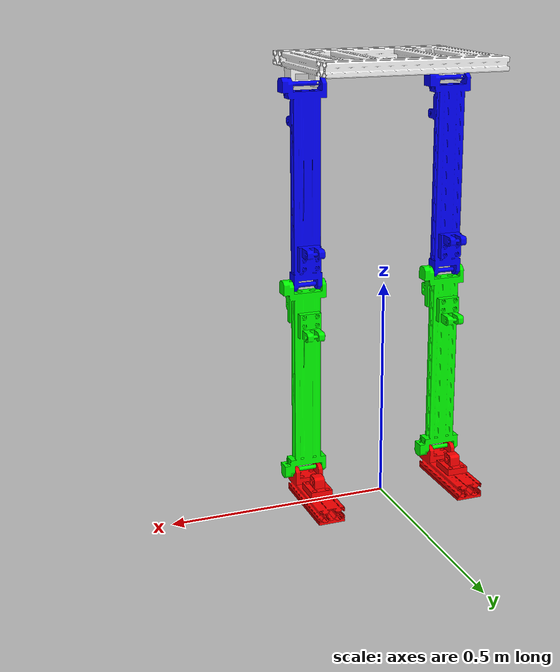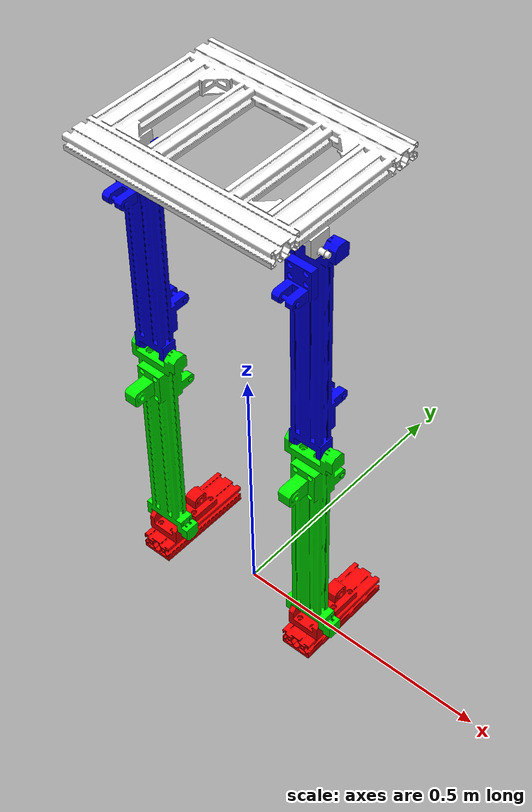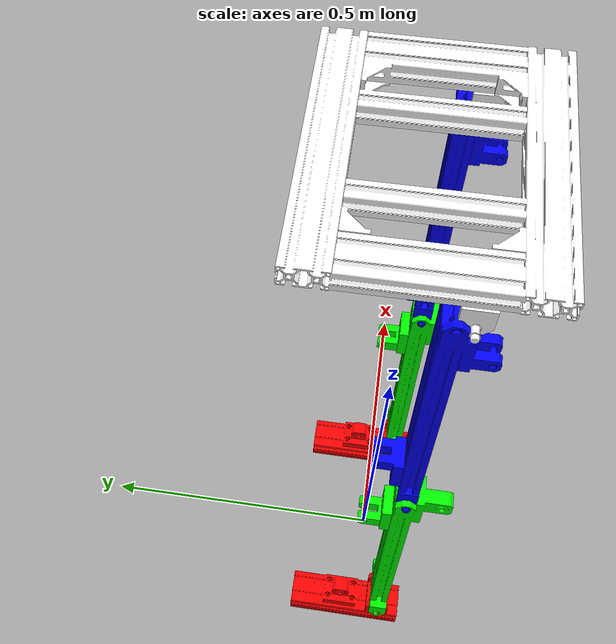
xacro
<?xml version="1.0" encoding="utf-8"?>
<robot
  name="hmr"
  xmlns:xacro="http://www.ros.org/wiki/xacro">

  <xacro:property name="PI" value="3.1415926535897931"/>
  <!-- Import Rviz colors -->
  <!-- Import all Gazebo-customization elements, including Gazebo colors -->
  <gazebo>
    <plugin name="gazebo_ros_control" filename="libgazebo_ros_control.so">
      <robotNamespace>/hmr</robotNamespace>
    </plugin>
  </gazebo>

  <link name="base">
  </link>
  <gazebo reference="base">
    <material>Gazebo/Blue</material>
  </gazebo>

  <joint name="imu_joint" type="fixed">
    <parent link="base"/>
    <child link="imu_link"/>
    <origin xyz="0.0 0.0 1.003 " rpy="0.0 0.0 3.1416"/>
  </joint>

  <!--IMU-->
  <link name="imu_link"/>

  <gazebo reference="imu_link">
    <gravity>true</gravity>
    <sensor name="imu_sensor" type="imu">
      <always_on>true</always_on>
      <update_rate>100</update_rate>
      <visualize>true</visualize>
      <topic>__default_topic__</topic>
      <plugin filename="libgazebo_ros_imu_sensor.so" name="imu_plugin">
        <topicName>imu/data</topicName>
        <bodyName>base</bodyName>
        <updateRateHZ>10.0</updateRateHZ>
        <gaussianNoise>0.0</gaussianNoise>
        <xyzOffset>0 0 0</xyzOffset>
        <rpyOffset>0 0 0</rpyOffset>
        <frameName>imu_link</frameName>
        <initialOrientationAsReference>false</initialOrientationAsReference>
      </plugin>
      <pose>0 0 0 0 0 0</pose>
    </sensor>
  </gazebo>

  <!--BASE_LINK-->
  <link
    name="base_link">
    <inertial>
      <origin
        xyz="-8.1485E-05 0.040306 -0.00093209"
        rpy="0 0 0" />
      <mass
        value="2.4018" />
      <inertia
        ixx="0.0070769"
        ixy="-2.7325E-07"
        ixz="1.9337E-07"
        iyy="0.015485"
        iyz="-1.2071E-07"
        izz="0.009591" />
    </inertial>
    <visual>
      <origin
        xyz="0 0 0"
        rpy="0 0 0" />
      <geometry>
        <mesh
          filename="package://hmr/hmr_description/meshes/base_link.STL" />
      </geometry>
      <material name="white">
        <color rgba="1.0 1.0 1.0 1.0"/>
      </material>
    </visual>
    <collision>
      <origin
        xyz="0 0 0"
        rpy="0 0 0" />
      <geometry>
        <mesh
          filename="package://hmr/hmr_description/meshes/base_link.STL" />
      </geometry>
    </collision>
  </link>
  <gazebo reference="base_link">
    <material>Gazebo/Blue</material>
  </gazebo>
  <joint name="joint" type="fixed">
    <parent link="base"/>
    <child link="base_link"/>
    <origin xyz="0.0 0.0 1.003 " rpy="0.0 0.0 3.1416"/>
  </joint>
  <!--LLINK1-->
  <link
    name="llink1">
    <inertial>
      <origin
        xyz="0.056084 -0.21548 -1.1057E-06"
        rpy="0 0 0" />
      <mass
        value="0.43137" />
      <inertia
        ixx="0.0026126"
        ixy="-1.5474E-07"
        ixz="-5.4626E-08"
        iyy="0.00020436"
        iyz="-9.8E-06"
        izz="0.0027266" />
    </inertial>
    <visual>
      <origin
        xyz="0 0 0"
        rpy="0 0 0" />
      <geometry>
        <mesh
          filename="package://hmr/hmr_description/meshes/llink1.STL" />
      </geometry>
      <material name="blue">
        <color rgba="0.0 0.0 1.0 1.0"/>
      </material>
    </visual>
    <collision>
      <origin
        xyz="0 0 0"
        rpy="0 0 0" />
      <geometry>
        <mesh
          filename="package://hmr/hmr_description/meshes/llink1.STL" />
      </geometry>
    </collision>
  </link>
  <gazebo reference="llink1">
    <material>Gazebo/Blue</material>
  </gazebo>
  <joint
    name="ljoint1"
    type="revolute">
    <origin
      xyz="0.1135 0.04 -0.06"
      rpy="1.5708 0 0" />
    <parent
      link="base_link" />
    <child
      link="llink1" />
    <axis
      xyz="1 0 0" />
    <limit lower="-0.6981" upper="0.5236" effort="2.0" velocity="0.2"/>
  </joint>
  <!--LLINK2-->
  <link
    name="llink2">
    <inertial>
      <origin
        xyz="0.054446 -0.17796 -0.0015786"
        rpy="0 0 0" />
      <mass
        value="0.45541" />
      <inertia
        ixx="0.002625"
        ixy="6.5245E-19"
        ixz="-3.637E-17"
        iyy="0.00023283"
        iyz="4.9149E-06"
        izz="0.0027437" />
    </inertial>
    <visual>
      <origin
        xyz="0 0 0"
        rpy="0 0 0" />
      <geometry>
        <mesh
          filename="package://hmr/hmr_description/meshes/llink2.STL" />
      </geometry>
      <material name="green">
        <color rgba="0.0 1.0 0.0 1.0"/>
      </material>
    </visual>
    <collision>
      <origin
        xyz="0 0 0"
        rpy="0 0 0" />
      <geometry>
        <mesh
          filename="package://hmr/hmr_description/meshes/llink2.STL" />
      </geometry>
    </collision>
  </link>
  <gazebo reference="llink2">
    <material>Gazebo/Blue</material>
  </gazebo>
  <joint
    name="ljoint2"
    type="revolute">
    <origin
      xyz="0 -0.438 0"
      rpy="0 0 0" />
    <parent
      link="llink1" />
    <child
      link="llink2" />
    <axis
      xyz="1 0 0" />
    <limit lower="0.0" upper="1.0472" effort="2.0" velocity="0.2"/>
  </joint>
  <!--LLINK3-->
  <link
    name="llink3">
    <inertial>
      <origin
        xyz="0.049198 -0.036675 0.049331"
        rpy="0 0 0" />
      <mass
        value="0.29119" />
      <inertia
        ixx="0.00061049"
        ixy="1.3662E-07"
        ixz="-9.6685E-08"
        iyy="0.00068435"
        iyz="-6.0356E-08"
        izz="0.00011606" />
    </inertial>
    <visual>
      <origin
        xyz="0 0 0"
        rpy="0 0 0" />
      <geometry>
        <mesh
          filename="package://hmr/hmr_description/meshes/llink3.STL" />
      </geometry>
      <material name="red">
        <color rgba="1.0 0.0 0.0 1.0"/>
      </material>
    </visual>
    <collision>
      <origin
        xyz="0 0 0"
        rpy="0 0 0" />
      <geometry>
        <mesh
          filename="package://hmr/hmr_description/meshes/llink3.STL" />
      </geometry>
    </collision>
  </link>
  <gazebo reference="llink3">
    <material>Gazebo/Blue</material>
  </gazebo>
  <joint
    name="ljoint3"
    type="revolute">
    <origin
      xyz="0.00735 -0.44 0"
      rpy="0 0 0" />
    <parent
      link="llink2" />
    <child
      link="llink3" />
    <axis
      xyz="1 0 0" />
    <limit lower="-0.3491" upper="0.8727" effort="2.0" velocity="0.2"/>
  </joint>
  <!--RLINK1-->
  <link
    name="rlink1">
    <inertial>
      <origin
        xyz="-0.046266 -0.21548 -1.1057E-06"
        rpy="0 0 0" />
      <mass
        value="0.43137" />
      <inertia
        ixx="0.0026126"
        ixy="-1.5474E-07"
        ixz="-5.4626E-08"
        iyy="0.00020436"
        iyz="-9.8E-06"
        izz="0.0027266" />
    </inertial>
    <visual>
      <origin
        xyz="0 0 0"
        rpy="0 0 0" />
      <geometry>
        <mesh
          filename="package://hmr/hmr_description/meshes/rlink1.STL" />
      </geometry>
      <material name="blue">
        <color rgba="0.0 0.0 1.0 1.0"/>
      </material>
    </visual>
    <collision>
      <origin
        xyz="0 0 0"
        rpy="0 0 0" />
      <geometry>
        <mesh
          filename="package://hmr/hmr_description/meshes/rlink1.STL" />
      </geometry>
    </collision>
  </link>
  <gazebo reference="rlink1">
    <material>Gazebo/Blue</material>
  </gazebo>
  <joint
    name="rjoint1"
    type="revolute">
    <origin
      xyz="-0.12415 0.04 -0.06"
      rpy="1.5708 0 0" />
    <parent
      link="base_link" />
    <child
      link="rlink1" />
    <axis
      xyz="1 0 0" />
    <limit lower="-0.6981" upper="0.5236" effort="2.0" velocity="0.2"/>
  </joint>
  <!--RLINK2-->
  <link
    name="rlink2">
    <inertial>
      <origin
        xyz="-0.047904 -0.17796 -0.0015786"
        rpy="0 0 0" />
      <mass
        value="0.45541" />
      <inertia
        ixx="0.002625"
        ixy="6.3076E-19"
        ixz="-3.6373E-17"
        iyy="0.00023283"
        iyz="4.9149E-06"
        izz="0.0027437" />
    </inertial>
    <visual>
      <origin
        xyz="0 0 0"
        rpy="0 0 0" />
      <geometry>
        <mesh
          filename="package://hmr/hmr_description/meshes/rlink2.STL" />
      </geometry>
      <material name="green">
        <color rgba="0.0 1.0 0.0 1.0"/>
      </material>
    </visual>
    <collision>
      <origin
        xyz="0 0 0"
        rpy="0 0 0" />
      <geometry>
        <mesh
          filename="package://hmr/hmr_description/meshes/rlink2.STL" />
      </geometry>
    </collision>
  </link>
  <gazebo reference="rlink2">
    <material>Gazebo/Blue</material>
  </gazebo>
  <joint
    name="rjoint2"
    type="revolute">
    <origin
      xyz="0 -0.438 0"
      rpy="0 0 0" />
    <parent
      link="rlink1" />
    <child
      link="rlink2" />
    <axis
      xyz="1 0 0" />
    <limit lower="0.0" upper="1.0472" effort="2.0" velocity="0.2"/>
  </joint>
  <!--RLINK3-->
  <link
    name="rlink3">
    <inertial>
      <origin
        xyz="-0.045802 -0.036675 0.049331"
        rpy="0 0 0" />
      <mass
        value="0.29119" />
      <inertia
        ixx="0.00061049"
        ixy="1.3662E-07"
        ixz="-9.6685E-08"
        iyy="0.00068435"
        iyz="-6.0356E-08"
        izz="0.00011606" />
    </inertial>
    <visual>
      <origin
        xyz="0 0 0"
        rpy="0 0 0" />
      <geometry>
        <mesh
          filename="package://hmr/hmr_description/meshes/rlink3.STL" />
      </geometry>
      <material name="red">
        <color rgba="1.0 0.0 0.0 1.0"/>
      </material>
    </visual>
    <collision>
      <origin
        xyz="0 0 0"
        rpy="0 0 0" />
      <geometry>
        <mesh
          filename="package://hmr/hmr_description/meshes/rlink3.STL" />
      </geometry>
    </collision>
  </link>
  <gazebo reference="rlink3">
    <material>Gazebo/Blue</material>
  </gazebo>
  <joint
    name="rjoint3"
    type="revolute">
    <origin
      xyz="0 -0.44 0"
      rpy="0 0 0" />
    <parent
      link="rlink2" />
    <child
      link="rlink3" />
    <axis
      xyz="1 0 0" />
    <limit lower="-0.3491" upper="0.8727" effort="2.0" velocity="0.2"/>
  </joint>
  <transmission name="ltran1">
    <type>transmission_interface/SimpleTransmission</type>
    <joint name="ljoint1">
      <hardwareInterface>hardware_interface/EffortJointInterface</hardwareInterface>
    </joint>
    <actuator name="lmotor1">
      <mechanicalReduction>1.0</mechanicalReduction>
      <hardwareInterface>hardware_interface/EffortJointInterface</hardwareInterface>
    </actuator>
  </transmission>

  <transmission name="ltran2">
    <type>transmission_interface/SimpleTransmission</type>
    <joint name="ljoint2">
      <hardwareInterface>hardware_interface/EffortJointInterface</hardwareInterface>
    </joint>
    <actuator name="lmotor2">
      <mechanicalReduction>1.0</mechanicalReduction>
      <hardwareInterface>hardware_interface/EffortJointInterface</hardwareInterface>
    </actuator>
  </transmission>

  <transmission name="ltran3">
    <type>transmission_interface/SimpleTransmission</type>
    <joint name="ljoint3">
      <hardwareInterface>hardware_interface/EffortJointInterface</hardwareInterface>
    </joint>
    <actuator name="lmotor3">
      <mechanicalReduction>1.0</mechanicalReduction>
      <hardwareInterface>hardware_interface/EffortJointInterface</hardwareInterface>
    </actuator>
  </transmission>

  <transmission name="rtran1">
    <type>transmission_interface/SimpleTransmission</type>
    <joint name="rjoint1">
      <hardwareInterface>hardware_interface/EffortJointInterface</hardwareInterface>
    </joint>
    <actuator name="rmotor1">
      <mechanicalReduction>1.0</mechanicalReduction>
      <hardwareInterface>hardware_interface/EffortJointInterface</hardwareInterface>
    </actuator>
  </transmission>

  <transmission name="rtran2">
    <type>transmission_interface/SimpleTransmission</type>
    <joint name="rjoint2">
      <hardwareInterface>hardware_interface/EffortJointInterface</hardwareInterface>
    </joint>
    <actuator name="rmotor2">
      <mechanicalReduction>1.0</mechanicalReduction>
      <hardwareInterface>hardware_interface/EffortJointInterface</hardwareInterface>
    </actuator>
  </transmission>

  <transmission name="rtran3">
    <type>transmission_interface/SimpleTransmission</type>
    <joint name="rjoint3">
      <hardwareInterface>hardware_interface/EffortJointInterface</hardwareInterface>
    </joint>
    <actuator name="rmotor3">
      <mechanicalReduction>1.0</mechanicalReduction>
      <hardwareInterface>hardware_interface/EffortJointInterface</hardwareInterface>
    </actuator>
  </transmission>

</robot>
